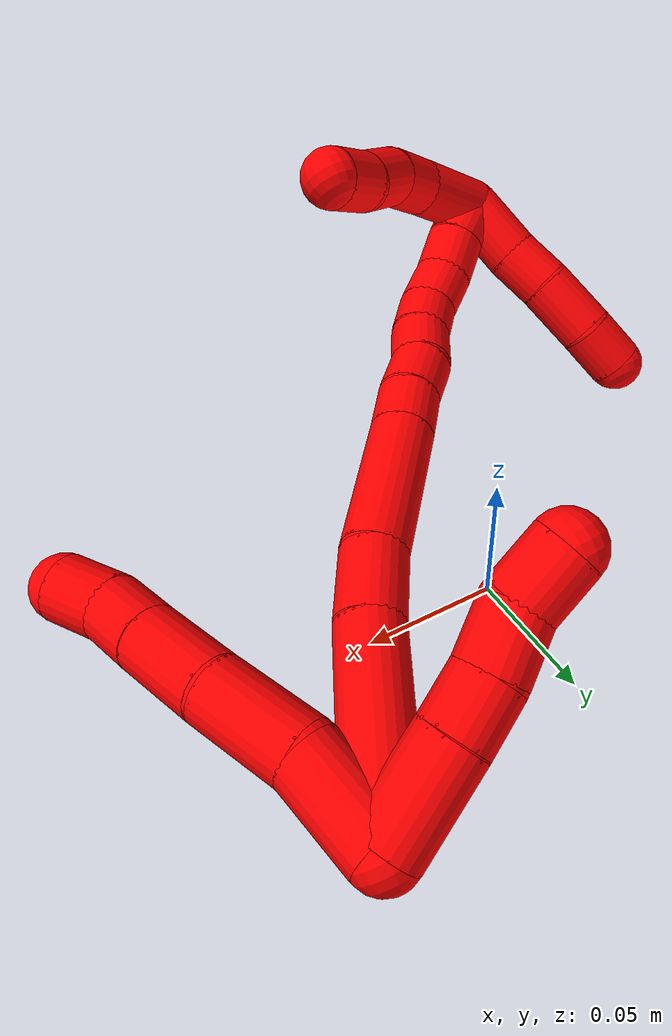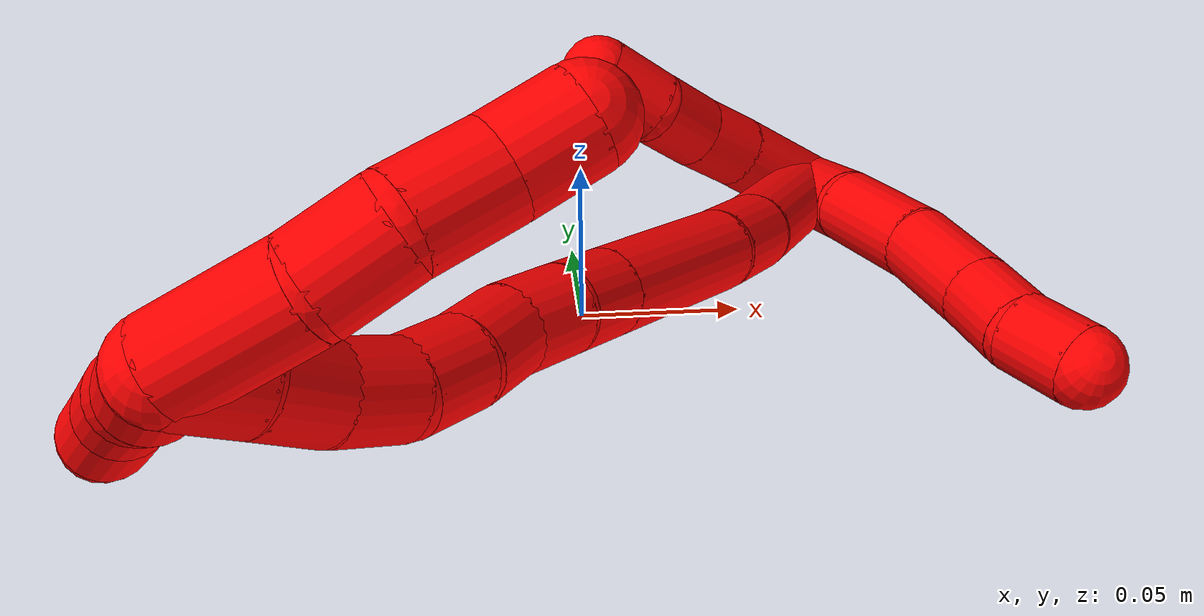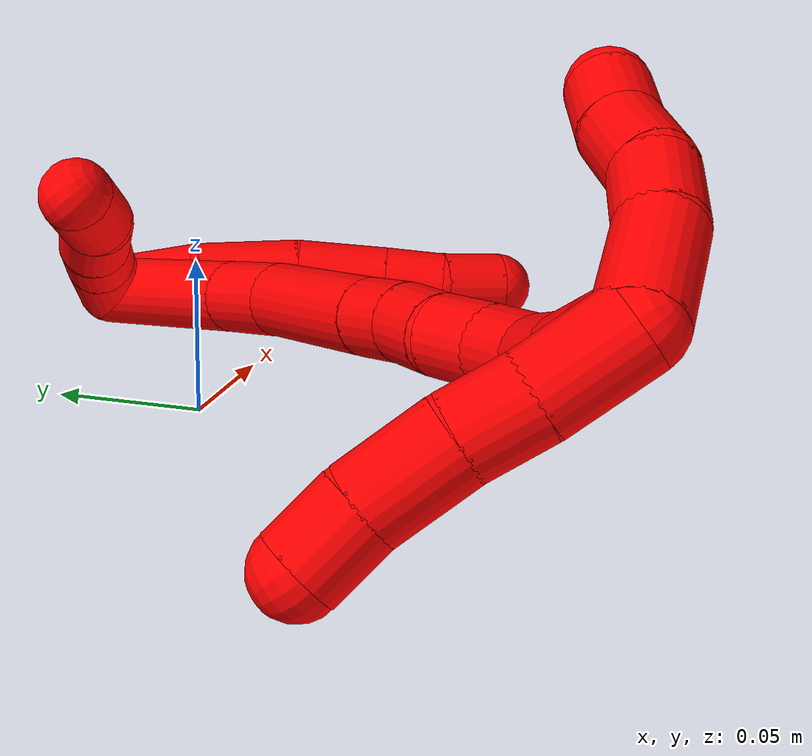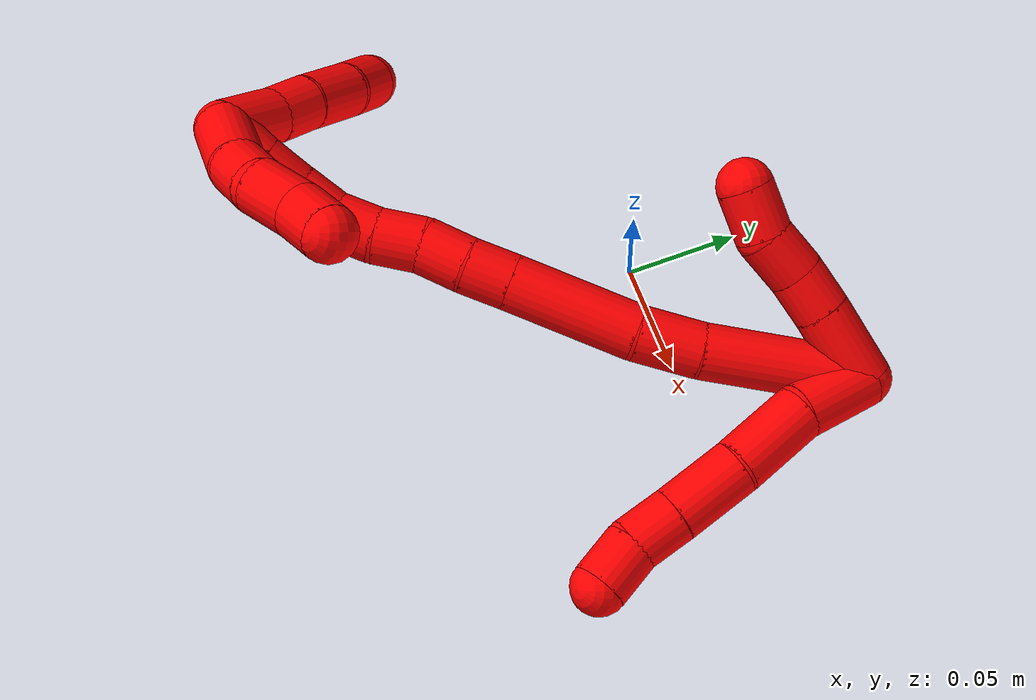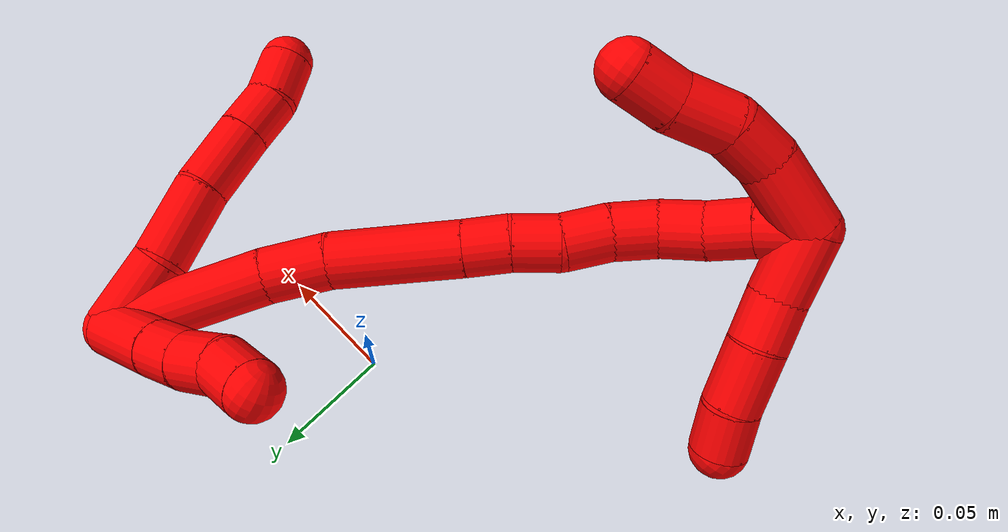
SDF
<sdf version="1.7">
 <world name="default">
  <model name="2">
   <static>0</static>
   <link name="2">
    <collision name="collision-cylinder-e_1_2_8">
     <pose>0.004506 -0.007192 0.015294 0.439599 0.260555 0.058525</pose>
     <geometry><cylinder><radius>0.0125</radius><length>0.034982</length></cylinder></geometry>
     <surface>
      <friction><ode><mu>1.16</mu><mu2>1.16</mu2><slip1>0</slip1><slip2>0</slip2></ode></friction>
      <contact><ode><kp>1e+06</kp><kd>1</kd><max_vel>0</max_vel><min_depth>0.001</min_depth></ode></contact>
     </surface>
    </collision>
    <visual name="visual-cylinder-e_1_2_8">
     <pose>0.004506 -0.007192 0.015294 0.439599 0.260555 0.058525</pose>
     <geometry><cylinder><radius>0.0125</radius><length>0.034982</length></cylinder></geometry>
     <material><ambient>1 0 0 1</ambient></material>
    </visual>
    <collision name="collision-cylinder-e_2_8_9">
     <pose>0.017592 -0.023187 0.044802 0.554452 0.474136 0.137287</pose>
     <geometry><cylinder><radius>0.0125</radius><length>0.037584</length></cylinder></geometry>
     <surface>
      <friction><ode><mu>1.16</mu><mu2>1.16</mu2><slip1>0</slip1><slip2>0</slip2></ode></friction>
      <contact><ode><kp>1e+06</kp><kd>1</kd><max_vel>0</max_vel><min_depth>0.001</min_depth></ode></contact>
     </surface>
    </collision>
    <visual name="visual-cylinder-e_2_8_9">
     <pose>0.017592 -0.023187 0.044802 0.554452 0.474136 0.137287</pose>
     <geometry><cylinder><radius>0.0125</radius><length>0.037584</length></cylinder></geometry>
     <material><ambient>1 0 0 1</ambient></material>
    </visual>
    <collision name="collision-cylinder-e_3_9_10">
     <pose>0.032942 -0.041651 0.070695 0.691152 0.420047 0.15319</pose>
     <geometry><cylinder><radius>0.0125</radius><length>0.033203</length></cylinder></geometry>
     <surface>
      <friction><ode><mu>1.16</mu><mu2>1.16</mu2><slip1>0</slip1><slip2>0</slip2></ode></friction>
      <contact><ode><kp>1e+06</kp><kd>1</kd><max_vel>0</max_vel><min_depth>0.001</min_depth></ode></contact>
     </surface>
    </collision>
    <visual name="visual-cylinder-e_3_9_10">
     <pose>0.032942 -0.041651 0.070695 0.691152 0.420047 0.15319</pose>
     <geometry><cylinder><radius>0.0125</radius><length>0.033203</length></cylinder></geometry>
     <material><ambient>1 0 0 1</ambient></material>
    </visual>
    <collision name="collision-cylinder-e_4_10_11">
     <pose>0.043875 -0.057934 0.090061 0.711015 0.389469 0.146198</pose>
     <geometry><cylinder><radius>0.0125</radius><length>0.02193</length></cylinder></geometry>
     <surface>
      <friction><ode><mu>1.16</mu><mu2>1.16</mu2><slip1>0</slip1><slip2>0</slip2></ode></friction>
      <contact><ode><kp>1e+06</kp><kd>1</kd><max_vel>0</max_vel><min_depth>0.001</min_depth></ode></contact>
     </surface>
    </collision>
    <visual name="visual-cylinder-e_4_10_11">
     <pose>0.043875 -0.057934 0.090061 0.711015 0.389469 0.146198</pose>
     <geometry><cylinder><radius>0.0125</radius><length>0.02193</length></cylinder></geometry>
     <material><ambient>1 0 0 1</ambient></material>
    </visual>
    <collision name="collision-cylinder-e_5_11_6">
     <pose>0.054752 -0.069593 0.105088 0.601581 0.646045 0.206937</pose>
     <geometry><cylinder><radius>0.0125</radius><length>0.022301</length></cylinder></geometry>
     <surface>
      <friction><ode><mu>1.16</mu><mu2>1.16</mu2><slip1>0</slip1><slip2>0</slip2></ode></friction>
      <contact><ode><kp>1e+06</kp><kd>1</kd><max_vel>0</max_vel><min_depth>0.001</min_depth></ode></contact>
     </surface>
    </collision>
    <visual name="visual-cylinder-e_5_11_6">
     <pose>0.054752 -0.069593 0.105088 0.601581 0.646045 0.206937</pose>
     <geometry><cylinder><radius>0.0125</radius><length>0.022301</length></cylinder></geometry>
     <material><ambient>1 0 0 1</ambient></material>
    </visual>
    <collision name="collision-cylinder-e_1_2_12">
     <pose>-0.015446 0.000532 0.008745 -0.060721 -1.05486 0.035375</pose>
     <geometry><cylinder><radius>0.0125</radius><length>0.035515</length></cylinder></geometry>
     <surface>
      <friction><ode><mu>1.16</mu><mu2>1.16</mu2><slip1>0</slip1><slip2>0</slip2></ode></friction>
      <contact><ode><kp>1e+06</kp><kd>1</kd><max_vel>0</max_vel><min_depth>0.001</min_depth></ode></contact>
     </surface>
    </collision>
    <visual name="visual-cylinder-e_1_2_12">
     <pose>-0.015446 0.000532 0.008745 -0.060721 -1.05486 0.035375</pose>
     <geometry><cylinder><radius>0.0125</radius><length>0.035515</length></cylinder></geometry>
     <material><ambient>1 0 0 1</ambient></material>
    </visual>
    <collision name="collision-cylinder-e_2_12_13">
     <pose>-0.039542 0.00094 0.022642 0.023931 -1.03336 -0.013597</pose>
     <geometry><cylinder><radius>0.0125</radius><length>0.020137</length></cylinder></geometry>
     <surface>
      <friction><ode><mu>1.16</mu><mu2>1.16</mu2><slip1>0</slip1><slip2>0</slip2></ode></friction>
      <contact><ode><kp>1e+06</kp><kd>1</kd><max_vel>0</max_vel><min_depth>0.001</min_depth></ode></contact>
     </surface>
    </collision>
    <visual name="visual-cylinder-e_2_12_13">
     <pose>-0.039542 0.00094 0.022642 0.023931 -1.03336 -0.013597</pose>
     <geometry><cylinder><radius>0.0125</radius><length>0.020137</length></cylinder></geometry>
     <material><ambient>1 0 0 1</ambient></material>
    </visual>
    <collision name="collision-cylinder-e_3_13_14">
     <pose>-0.056657 0.000551 0.034641 0.038786 -0.890511 -0.018511</pose>
     <geometry><cylinder><radius>0.0125</radius><length>0.021782</length></cylinder></geometry>
     <surface>
      <friction><ode><mu>1.16</mu><mu2>1.16</mu2><slip1>0</slip1><slip2>0</slip2></ode></friction>
      <contact><ode><kp>1e+06</kp><kd>1</kd><max_vel>0</max_vel><min_depth>0.001</min_depth></ode></contact>
     </surface>
    </collision>
    <visual name="visual-cylinder-e_3_13_14">
     <pose>-0.056657 0.000551 0.034641 0.038786 -0.890511 -0.018511</pose>
     <geometry><cylinder><radius>0.0125</radius><length>0.021782</length></cylinder></geometry>
     <material><ambient>1 0 0 1</ambient></material>
    </visual>
    <collision name="collision-cylinder-e_4_14_5">
     <pose>-0.075408 0.002155 0.045733 -0.414682 -1.14694 0.270083</pose>
     <geometry><cylinder><radius>0.0125</radius><length>0.022566</length></cylinder></geometry>
     <surface>
      <friction><ode><mu>1.16</mu><mu2>1.16</mu2><slip1>0</slip1><slip2>0</slip2></ode></friction>
      <contact><ode><kp>1e+06</kp><kd>1</kd><max_vel>0</max_vel><min_depth>0.001</min_depth></ode></contact>
     </surface>
    </collision>
    <visual name="visual-cylinder-e_4_14_5">
     <pose>-0.075408 0.002155 0.045733 -0.414682 -1.14694 0.270083</pose>
     <geometry><cylinder><radius>0.0125</radius><length>0.022566</length></cylinder></geometry>
     <material><ambient>1 0 0 1</ambient></material>
    </visual>
    <collision name="collision-cylinder-e_1_2_15">
     <pose>-0.01342 -0.01954 0.027008 0.626314 -0.382723 -0.125302</pose>
     <geometry><cylinder><radius>0.0125</radius><length>0.07187</length></cylinder></geometry>
     <surface>
      <friction><ode><mu>1.16</mu><mu2>1.16</mu2><slip1>0</slip1><slip2>0</slip2></ode></friction>
      <contact><ode><kp>1e+06</kp><kd>1</kd><max_vel>0</max_vel><min_depth>0.001</min_depth></ode></contact>
     </surface>
    </collision>
    <visual name="visual-cylinder-e_1_2_15">
     <pose>-0.01342 -0.01954 0.027008 0.626314 -0.382723 -0.125302</pose>
     <geometry><cylinder><radius>0.0125</radius><length>0.07187</length></cylinder></geometry>
     <material><ambient>1 0 0 1</ambient></material>
    </visual>
    <collision name="collision-cylinder-e_2_15_16">
     <pose>-0.03351 -0.046476 0.064134 0.63124 -0.489048 -0.162593</pose>
     <geometry><cylinder><radius>0.0125</radius><length>0.028395</length></cylinder></geometry>
     <surface>
      <friction><ode><mu>1.16</mu><mu2>1.16</mu2><slip1>0</slip1><slip2>0</slip2></ode></friction>
      <contact><ode><kp>1e+06</kp><kd>1</kd><max_vel>0</max_vel><min_depth>0.001</min_depth></ode></contact>
     </surface>
    </collision>
    <visual name="visual-cylinder-e_2_15_16">
     <pose>-0.03351 -0.046476 0.064134 0.63124 -0.489048 -0.162593</pose>
     <geometry><cylinder><radius>0.0125</radius><length>0.028395</length></cylinder></geometry>
     <material><ambient>1 0 0 1</ambient></material>
    </visual>
    <collision name="collision-cylinder-e_3_16_17">
     <pose>-0.056954 -0.069018 0.092334 0.697237 -0.618178 -0.231091</pose>
     <geometry><cylinder><radius>0.0125</radius><length>0.057887</length></cylinder></geometry>
     <surface>
      <friction><ode><mu>1.16</mu><mu2>1.16</mu2><slip1>0</slip1><slip2>0</slip2></ode></friction>
      <contact><ode><kp>1e+06</kp><kd>1</kd><max_vel>0</max_vel><min_depth>0.001</min_depth></ode></contact>
     </surface>
    </collision>
    <visual name="visual-cylinder-e_3_16_17">
     <pose>-0.056954 -0.069018 0.092334 0.697237 -0.618178 -0.231091</pose>
     <geometry><cylinder><radius>0.0125</radius><length>0.057887</length></cylinder></geometry>
     <material><ambient>1 0 0 1</ambient></material>
    </visual>
    <collision name="collision-cylinder-e_4_17_18">
     <pose>-0.079408 -0.089372 0.116969 0.67164 -0.596255 -0.213694</pose>
     <geometry><cylinder><radius>0.0125</radius><length>0.020231</length></cylinder></geometry>
     <surface>
      <friction><ode><mu>1.16</mu><mu2>1.16</mu2><slip1>0</slip1><slip2>0</slip2></ode></friction>
      <contact><ode><kp>1e+06</kp><kd>1</kd><max_vel>0</max_vel><min_depth>0.001</min_depth></ode></contact>
     </surface>
    </collision>
    <visual name="visual-cylinder-e_4_17_18">
     <pose>-0.079408 -0.089372 0.116969 0.67164 -0.596255 -0.213694</pose>
     <geometry><cylinder><radius>0.0125</radius><length>0.020231</length></cylinder></geometry>
     <material><ambient>1 0 0 1</ambient></material>
    </visual>
    <collision name="collision-cylinder-e_5_18_19">
     <pose>-0.091591 -0.100255 0.129161 0.788497 -0.682432 -0.293347</pose>
     <geometry><cylinder><radius>0.0125</radius><length>0.02062</length></cylinder></geometry>
     <surface>
      <friction><ode><mu>1.16</mu><mu2>1.16</mu2><slip1>0</slip1><slip2>0</slip2></ode></friction>
      <contact><ode><kp>1e+06</kp><kd>1</kd><max_vel>0</max_vel><min_depth>0.001</min_depth></ode></contact>
     </surface>
    </collision>
    <visual name="visual-cylinder-e_5_18_19">
     <pose>-0.091591 -0.100255 0.129161 0.788497 -0.682432 -0.293347</pose>
     <geometry><cylinder><radius>0.0125</radius><length>0.02062</length></cylinder></geometry>
     <material><ambient>1 0 0 1</ambient></material>
    </visual>
    <collision name="collision-cylinder-e_6_19_20">
     <pose>-0.102527 -0.112338 0.14169 0.749181 -0.440351 -0.175526</pose>
     <geometry><cylinder><radius>0.0125</radius><length>0.020801</length></cylinder></geometry>
     <surface>
      <friction><ode><mu>1.16</mu><mu2>1.16</mu2><slip1>0</slip1><slip2>0</slip2></ode></friction>
      <contact><ode><kp>1e+06</kp><kd>1</kd><max_vel>0</max_vel><min_depth>0.001</min_depth></ode></contact>
     </surface>
    </collision>
    <visual name="visual-cylinder-e_6_19_20">
     <pose>-0.102527 -0.112338 0.14169 0.749181 -0.440351 -0.175526</pose>
     <geometry><cylinder><radius>0.0125</radius><length>0.020801</length></cylinder></geometry>
     <material><ambient>1 0 0 1</ambient></material>
    </visual>
    <collision name="collision-cylinder-e_7_20_21">
     <pose>-0.112739 -0.124365 0.154545 0.755583 -0.614171 -0.250382</pose>
     <geometry><cylinder><radius>0.0125</radius><length>0.020057</length></cylinder></geometry>
     <surface>
      <friction><ode><mu>1.16</mu><mu2>1.16</mu2><slip1>0</slip1><slip2>0</slip2></ode></friction>
      <contact><ode><kp>1e+06</kp><kd>1</kd><max_vel>0</max_vel><min_depth>0.001</min_depth></ode></contact>
     </surface>
    </collision>
    <visual name="visual-cylinder-e_7_20_21">
     <pose>-0.112739 -0.124365 0.154545 0.755583 -0.614171 -0.250382</pose>
     <geometry><cylinder><radius>0.0125</radius><length>0.020057</length></cylinder></geometry>
     <material><ambient>1 0 0 1</ambient></material>
    </visual>
    <collision name="collision-cylinder-e_8_21_22">
     <pose>-0.126075 -0.133086 0.166372 0.486531 -0.850556 -0.223871</pose>
     <geometry><cylinder><radius>0.0125</radius><length>0.020108</length></cylinder></geometry>
     <surface>
      <friction><ode><mu>1.16</mu><mu2>1.16</mu2><slip1>0</slip1><slip2>0</slip2></ode></friction>
      <contact><ode><kp>1e+06</kp><kd>1</kd><max_vel>0</max_vel><min_depth>0.001</min_depth></ode></contact>
     </surface>
    </collision>
    <visual name="visual-cylinder-e_8_21_22">
     <pose>-0.126075 -0.133086 0.166372 0.486531 -0.850556 -0.223871</pose>
     <geometry><cylinder><radius>0.0125</radius><length>0.020108</length></cylinder></geometry>
     <material><ambient>1 0 0 1</ambient></material>
    </visual>
    <collision name="collision-cylinder-e_9_22_23">
     <pose>-0.140728 -0.137693 0.179125 0.215289 -0.788337 -0.089833</pose>
     <geometry><cylinder><radius>0.0125</radius><length>0.020012</length></cylinder></geometry>
     <surface>
      <friction><ode><mu>1.16</mu><mu2>1.16</mu2><slip1>0</slip1><slip2>0</slip2></ode></friction>
      <contact><ode><kp>1e+06</kp><kd>1</kd><max_vel>0</max_vel><min_depth>0.001</min_depth></ode></contact>
     </surface>
    </collision>
    <visual name="visual-cylinder-e_9_22_23">
     <pose>-0.140728 -0.137693 0.179125 0.215289 -0.788337 -0.089833</pose>
     <geometry><cylinder><radius>0.0125</radius><length>0.020012</length></cylinder></geometry>
     <material><ambient>1 0 0 1</ambient></material>
    </visual>
    <collision name="collision-cylinder-e_10_23_1">
     <pose>-0.155578 -0.140725 0.19216 0.243331 -0.886194 -0.11592</pose>
     <geometry><cylinder><radius>0.0125</radius><length>0.020019</length></cylinder></geometry>
     <surface>
      <friction><ode><mu>1.16</mu><mu2>1.16</mu2><slip1>0</slip1><slip2>0</slip2></ode></friction>
      <contact><ode><kp>1e+06</kp><kd>1</kd><max_vel>0</max_vel><min_depth>0.001</min_depth></ode></contact>
     </surface>
    </collision>
    <visual name="visual-cylinder-e_10_23_1">
     <pose>-0.155578 -0.140725 0.19216 0.243331 -0.886194 -0.11592</pose>
     <geometry><cylinder><radius>0.0125</radius><length>0.020019</length></cylinder></geometry>
     <material><ambient>1 0 0 1</ambient></material>
    </visual>
    <collision name="collision-cylinder-e_1_1_24">
     <pose>-0.15105 -0.132521 0.204658 -0.992235 0.813072 -0.457884</pose>
     <geometry><cylinder><radius>0.0125</radius><length>0.033817</length></cylinder></geometry>
     <surface>
      <friction><ode><mu>1.16</mu><mu2>1.16</mu2><slip1>0</slip1><slip2>0</slip2></ode></friction>
      <contact><ode><kp>1e+06</kp><kd>1</kd><max_vel>0</max_vel><min_depth>0.001</min_depth></ode></contact>
     </surface>
    </collision>
    <visual name="visual-cylinder-e_1_1_24">
     <pose>-0.15105 -0.132521 0.204658 -0.992235 0.813072 -0.457884</pose>
     <geometry><cylinder><radius>0.0125</radius><length>0.033817</length></cylinder></geometry>
     <material><ambient>1 0 0 1</ambient></material>
    </visual>
    <collision name="collision-cylinder-e_2_24_25">
     <pose>-0.131627 -0.115174 0.212995 -1.31611 0.736787 -0.579952</pose>
     <geometry><cylinder><radius>0.0125</radius><length>0.021257</length></cylinder></geometry>
     <surface>
      <friction><ode><mu>1.16</mu><mu2>1.16</mu2><slip1>0</slip1><slip2>0</slip2></ode></friction>
      <contact><ode><kp>1e+06</kp><kd>1</kd><max_vel>0</max_vel><min_depth>0.001</min_depth></ode></contact>
     </surface>
    </collision>
    <visual name="visual-cylinder-e_2_24_25">
     <pose>-0.131627 -0.115174 0.212995 -1.31611 0.736787 -0.579952</pose>
     <geometry><cylinder><radius>0.0125</radius><length>0.021257</length></cylinder></geometry>
     <material><ambient>1 0 0 1</ambient></material>
    </visual>
    <collision name="collision-cylinder-e_3_25_26">
     <pose>-0.116125 -0.098973 0.213172 -1.77828 0.761394 -0.916457</pose>
     <geometry><cylinder><radius>0.0125</radius><length>0.024235</length></cylinder></geometry>
     <surface>
      <friction><ode><mu>1.16</mu><mu2>1.16</mu2><slip1>0</slip1><slip2>0</slip2></ode></friction>
      <contact><ode><kp>1e+06</kp><kd>1</kd><max_vel>0</max_vel><min_depth>0.001</min_depth></ode></contact>
     </surface>
    </collision>
    <visual name="visual-cylinder-e_3_25_26">
     <pose>-0.116125 -0.098973 0.213172 -1.77828 0.761394 -0.916457</pose>
     <geometry><cylinder><radius>0.0125</radius><length>0.024235</length></cylinder></geometry>
     <material><ambient>1 0 0 1</ambient></material>
    </visual>
    <collision name="collision-cylinder-e_4_26_4">
     <pose>-0.100504 -0.083036 0.211857 -1.50398 0.778006 -0.732191</pose>
     <geometry><cylinder><radius>0.0125</radius><length>0.020692</length></cylinder></geometry>
     <surface>
      <friction><ode><mu>1.16</mu><mu2>1.16</mu2><slip1>0</slip1><slip2>0</slip2></ode></friction>
      <contact><ode><kp>1e+06</kp><kd>1</kd><max_vel>0</max_vel><min_depth>0.001</min_depth></ode></contact>
     </surface>
    </collision>
    <visual name="visual-cylinder-e_4_26_4">
     <pose>-0.100504 -0.083036 0.211857 -1.50398 0.778006 -0.732191</pose>
     <geometry><cylinder><radius>0.0125</radius><length>0.020692</length></cylinder></geometry>
     <material><ambient>1 0 0 1</ambient></material>
    </visual>
    <collision name="collision-cylinder-e_1_1_27">
     <pose>-0.16695 -0.142747 0.183959 3.10698 -0.246898 -2.86439</pose>
     <geometry><cylinder><radius>0.0125</radius><length>0.029603</length></cylinder></geometry>
     <surface>
      <friction><ode><mu>1.16</mu><mu2>1.16</mu2><slip1>0</slip1><slip2>0</slip2></ode></friction>
      <contact><ode><kp>1e+06</kp><kd>1</kd><max_vel>0</max_vel><min_depth>0.001</min_depth></ode></contact>
     </surface>
    </collision>
    <visual name="visual-cylinder-e_1_1_27">
     <pose>-0.16695 -0.142747 0.183959 3.10698 -0.246898 -2.86439</pose>
     <geometry><cylinder><radius>0.0125</radius><length>0.029603</length></cylinder></geometry>
     <material><ambient>1 0 0 1</ambient></material>
    </visual>
    <collision name="collision-cylinder-e_2_27_28">
     <pose>-0.17393 -0.142723 0.159669 -3.08928 -0.325632 2.8257</pose>
     <geometry><cylinder><radius>0.0125</radius><length>0.021024</length></cylinder></geometry>
     <surface>
      <friction><ode><mu>1.16</mu><mu2>1.16</mu2><slip1>0</slip1><slip2>0</slip2></ode></friction>
      <contact><ode><kp>1e+06</kp><kd>1</kd><max_vel>0</max_vel><min_depth>0.001</min_depth></ode></contact>
     </surface>
    </collision>
    <visual name="visual-cylinder-e_2_27_28">
     <pose>-0.17393 -0.142723 0.159669 -3.08928 -0.325632 2.8257</pose>
     <geometry><cylinder><radius>0.0125</radius><length>0.021024</length></cylinder></geometry>
     <material><ambient>1 0 0 1</ambient></material>
    </visual>
    <collision name="collision-cylinder-e_3_28_29">
     <pose>-0.181295 -0.143074 0.136243 3.07699 -0.287987 -2.70308</pose>
     <geometry><cylinder><radius>0.0125</radius><length>0.028175</length></cylinder></geometry>
     <surface>
      <friction><ode><mu>1.16</mu><mu2>1.16</mu2><slip1>0</slip1><slip2>0</slip2></ode></friction>
      <contact><ode><kp>1e+06</kp><kd>1</kd><max_vel>0</max_vel><min_depth>0.001</min_depth></ode></contact>
     </surface>
    </collision>
    <visual name="visual-cylinder-e_3_28_29">
     <pose>-0.181295 -0.143074 0.136243 3.07699 -0.287987 -2.70308</pose>
     <geometry><cylinder><radius>0.0125</radius><length>0.028175</length></cylinder></geometry>
     <material><ambient>1 0 0 1</ambient></material>
    </visual>
    <collision name="collision-cylinder-e_4_29_3">
     <pose>-0.188753 -0.146336 0.113034 2.90068 -0.332242 -1.89102</pose>
     <geometry><cylinder><radius>0.0125</radius><length>0.021197</length></cylinder></geometry>
     <surface>
      <friction><ode><mu>1.16</mu><mu2>1.16</mu2><slip1>0</slip1><slip2>0</slip2></ode></friction>
      <contact><ode><kp>1e+06</kp><kd>1</kd><max_vel>0</max_vel><min_depth>0.001</min_depth></ode></contact>
     </surface>
    </collision>
    <visual name="visual-cylinder-e_4_29_3">
     <pose>-0.188753 -0.146336 0.113034 2.90068 -0.332242 -1.89102</pose>
     <geometry><cylinder><radius>0.0125</radius><length>0.021197</length></cylinder></geometry>
     <material><ambient>1 0 0 1</ambient></material>
    </visual>
    <collision name="collision-sphere-3">
     <pose>-0.192209 -0.148727 0.103305 0 -0 0</pose>
     <geometry><sphere><radius>0.0125</radius></sphere></geometry>
     <surface>
      <friction><ode><mu>1.16</mu><mu2>1.16</mu2><slip1>0</slip1><slip2>0</slip2></ode></friction>
      <contact><ode><kp>1e+06</kp><kd>1</kd><max_vel>0</max_vel><min_depth>0.001</min_depth></ode></contact>
     </surface>
    </collision>
    <visual name="visual-sphere-3">
     <pose>-0.192209 -0.148727 0.103305 0 -0 0</pose>
     <geometry><sphere><radius>0.0125</radius></sphere></geometry>
     <material><ambient>1 0 0 1</ambient></material>
    </visual>
    <collision name="collision-sphere-29">
     <pose>-0.185296 -0.143946 0.122764 0 -0 0</pose>
     <geometry><sphere><radius>0.0125</radius></sphere></geometry>
     <surface>
      <friction><ode><mu>1.16</mu><mu2>1.16</mu2><slip1>0</slip1><slip2>0</slip2></ode></friction>
      <contact><ode><kp>1e+06</kp><kd>1</kd><max_vel>0</max_vel><min_depth>0.001</min_depth></ode></contact>
     </surface>
    </collision>
    <visual name="visual-sphere-29">
     <pose>-0.185296 -0.143946 0.122764 0 -0 0</pose>
     <geometry><sphere><radius>0.0125</radius></sphere></geometry>
     <material><ambient>1 0 0 1</ambient></material>
    </visual>
    <collision name="collision-sphere-28">
     <pose>-0.177293 -0.142202 0.149723 0 -0 0</pose>
     <geometry><sphere><radius>0.0125</radius></sphere></geometry>
     <surface>
      <friction><ode><mu>1.16</mu><mu2>1.16</mu2><slip1>0</slip1><slip2>0</slip2></ode></friction>
      <contact><ode><kp>1e+06</kp><kd>1</kd><max_vel>0</max_vel><min_depth>0.001</min_depth></ode></contact>
     </surface>
    </collision>
    <visual name="visual-sphere-28">
     <pose>-0.177293 -0.142202 0.149723 0 -0 0</pose>
     <geometry><sphere><radius>0.0125</radius></sphere></geometry>
     <material><ambient>1 0 0 1</ambient></material>
    </visual>
    <collision name="collision-sphere-27">
     <pose>-0.170567 -0.143244 0.169615 0 -0 0</pose>
     <geometry><sphere><radius>0.0125</radius></sphere></geometry>
     <surface>
      <friction><ode><mu>1.16</mu><mu2>1.16</mu2><slip1>0</slip1><slip2>0</slip2></ode></friction>
      <contact><ode><kp>1e+06</kp><kd>1</kd><max_vel>0</max_vel><min_depth>0.001</min_depth></ode></contact>
     </surface>
    </collision>
    <visual name="visual-sphere-27">
     <pose>-0.170567 -0.143244 0.169615 0 -0 0</pose>
     <geometry><sphere><radius>0.0125</radius></sphere></geometry>
     <material><ambient>1 0 0 1</ambient></material>
    </visual>
    <collision name="collision-sphere-4">
     <pose>-0.093242 -0.075683 0.212349 0 -0 0</pose>
     <geometry><sphere><radius>0.0125</radius></sphere></geometry>
     <surface>
      <friction><ode><mu>1.16</mu><mu2>1.16</mu2><slip1>0</slip1><slip2>0</slip2></ode></friction>
      <contact><ode><kp>1e+06</kp><kd>1</kd><max_vel>0</max_vel><min_depth>0.001</min_depth></ode></contact>
     </surface>
    </collision>
    <visual name="visual-sphere-4">
     <pose>-0.093242 -0.075683 0.212349 0 -0 0</pose>
     <geometry><sphere><radius>0.0125</radius></sphere></geometry>
     <material><ambient>1 0 0 1</ambient></material>
    </visual>
    <collision name="collision-sphere-26">
     <pose>-0.107765 -0.090389 0.211365 0 -0 0</pose>
     <geometry><sphere><radius>0.0125</radius></sphere></geometry>
     <surface>
      <friction><ode><mu>1.16</mu><mu2>1.16</mu2><slip1>0</slip1><slip2>0</slip2></ode></friction>
      <contact><ode><kp>1e+06</kp><kd>1</kd><max_vel>0</max_vel><min_depth>0.001</min_depth></ode></contact>
     </surface>
    </collision>
    <visual name="visual-sphere-26">
     <pose>-0.107765 -0.090389 0.211365 0 -0 0</pose>
     <geometry><sphere><radius>0.0125</radius></sphere></geometry>
     <material><ambient>1 0 0 1</ambient></material>
    </visual>
    <collision name="collision-sphere-25">
     <pose>-0.124485 -0.107556 0.214979 0 -0 0</pose>
     <geometry><sphere><radius>0.0125</radius></sphere></geometry>
     <surface>
      <friction><ode><mu>1.16</mu><mu2>1.16</mu2><slip1>0</slip1><slip2>0</slip2></ode></friction>
      <contact><ode><kp>1e+06</kp><kd>1</kd><max_vel>0</max_vel><min_depth>0.001</min_depth></ode></contact>
     </surface>
    </collision>
    <visual name="visual-sphere-25">
     <pose>-0.124485 -0.107556 0.214979 0 -0 0</pose>
     <geometry><sphere><radius>0.0125</radius></sphere></geometry>
     <material><ambient>1 0 0 1</ambient></material>
    </visual>
    <collision name="collision-sphere-24">
     <pose>-0.138768 -0.122792 0.211012 0 -0 0</pose>
     <geometry><sphere><radius>0.0125</radius></sphere></geometry>
     <surface>
      <friction><ode><mu>1.16</mu><mu2>1.16</mu2><slip1>0</slip1><slip2>0</slip2></ode></friction>
      <contact><ode><kp>1e+06</kp><kd>1</kd><max_vel>0</max_vel><min_depth>0.001</min_depth></ode></contact>
     </surface>
    </collision>
    <visual name="visual-sphere-24">
     <pose>-0.138768 -0.122792 0.211012 0 -0 0</pose>
     <geometry><sphere><radius>0.0125</radius></sphere></geometry>
     <material><ambient>1 0 0 1</ambient></material>
    </visual>
    <collision name="collision-sphere-1">
     <pose>-0.163332 -0.14225 0.198303 0 -0 0</pose>
     <geometry><sphere><radius>0.0125</radius></sphere></geometry>
     <surface>
      <friction><ode><mu>1.16</mu><mu2>1.16</mu2><slip1>0</slip1><slip2>0</slip2></ode></friction>
      <contact><ode><kp>1e+06</kp><kd>1</kd><max_vel>0</max_vel><min_depth>0.001</min_depth></ode></contact>
     </surface>
    </collision>
    <visual name="visual-sphere-1">
     <pose>-0.163332 -0.14225 0.198303 0 -0 0</pose>
     <geometry><sphere><radius>0.0125</radius></sphere></geometry>
     <material><ambient>1 0 0 1</ambient></material>
    </visual>
    <collision name="collision-sphere-23">
     <pose>-0.147824 -0.1392 0.186017 0 -0 0</pose>
     <geometry><sphere><radius>0.0125</radius></sphere></geometry>
     <surface>
      <friction><ode><mu>1.16</mu><mu2>1.16</mu2><slip1>0</slip1><slip2>0</slip2></ode></friction>
      <contact><ode><kp>1e+06</kp><kd>1</kd><max_vel>0</max_vel><min_depth>0.001</min_depth></ode></contact>
     </surface>
    </collision>
    <visual name="visual-sphere-23">
     <pose>-0.147824 -0.1392 0.186017 0 -0 0</pose>
     <geometry><sphere><radius>0.0125</radius></sphere></geometry>
     <material><ambient>1 0 0 1</ambient></material>
    </visual>
    <collision name="collision-sphere-22">
     <pose>-0.133632 -0.136186 0.172234 0 -0 0</pose>
     <geometry><sphere><radius>0.0125</radius></sphere></geometry>
     <surface>
      <friction><ode><mu>1.16</mu><mu2>1.16</mu2><slip1>0</slip1><slip2>0</slip2></ode></friction>
      <contact><ode><kp>1e+06</kp><kd>1</kd><max_vel>0</max_vel><min_depth>0.001</min_depth></ode></contact>
     </surface>
    </collision>
    <visual name="visual-sphere-22">
     <pose>-0.133632 -0.136186 0.172234 0 -0 0</pose>
     <geometry><sphere><radius>0.0125</radius></sphere></geometry>
     <material><ambient>1 0 0 1</ambient></material>
    </visual>
    <collision name="collision-sphere-21">
     <pose>-0.118518 -0.129985 0.16051 0 -0 0</pose>
     <geometry><sphere><radius>0.0125</radius></sphere></geometry>
     <surface>
      <friction><ode><mu>1.16</mu><mu2>1.16</mu2><slip1>0</slip1><slip2>0</slip2></ode></friction>
      <contact><ode><kp>1e+06</kp><kd>1</kd><max_vel>0</max_vel><min_depth>0.001</min_depth></ode></contact>
     </surface>
    </collision>
    <visual name="visual-sphere-21">
     <pose>-0.118518 -0.129985 0.16051 0 -0 0</pose>
     <geometry><sphere><radius>0.0125</radius></sphere></geometry>
     <material><ambient>1 0 0 1</ambient></material>
    </visual>
    <collision name="collision-sphere-6">
     <pose>0.061465 -0.074631 0.112428 0 -0 0</pose>
     <geometry><sphere><radius>0.0125</radius></sphere></geometry>
     <surface>
      <friction><ode><mu>1.16</mu><mu2>1.16</mu2><slip1>0</slip1><slip2>0</slip2></ode></friction>
      <contact><ode><kp>1e+06</kp><kd>1</kd><max_vel>0</max_vel><min_depth>0.001</min_depth></ode></contact>
     </surface>
    </collision>
    <visual name="visual-sphere-6">
     <pose>0.061465 -0.074631 0.112428 0 -0 0</pose>
     <geometry><sphere><radius>0.0125</radius></sphere></geometry>
     <material><ambient>1 0 0 1</ambient></material>
    </visual>
    <collision name="collision-sphere-11">
     <pose>0.048039 -0.064554 0.097747 0 -0 0</pose>
     <geometry><sphere><radius>0.0125</radius></sphere></geometry>
     <surface>
      <friction><ode><mu>1.16</mu><mu2>1.16</mu2><slip1>0</slip1><slip2>0</slip2></ode></friction>
      <contact><ode><kp>1e+06</kp><kd>1</kd><max_vel>0</max_vel><min_depth>0.001</min_depth></ode></contact>
     </surface>
    </collision>
    <visual name="visual-sphere-11">
     <pose>0.048039 -0.064554 0.097747 0 -0 0</pose>
     <geometry><sphere><radius>0.0125</radius></sphere></geometry>
     <material><ambient>1 0 0 1</ambient></material>
    </visual>
    <collision name="collision-sphere-10">
     <pose>0.039712 -0.051314 0.082375 0 -0 0</pose>
     <geometry><sphere><radius>0.0125</radius></sphere></geometry>
     <surface>
      <friction><ode><mu>1.16</mu><mu2>1.16</mu2><slip1>0</slip1><slip2>0</slip2></ode></friction>
      <contact><ode><kp>1e+06</kp><kd>1</kd><max_vel>0</max_vel><min_depth>0.001</min_depth></ode></contact>
     </surface>
    </collision>
    <visual name="visual-sphere-10">
     <pose>0.039712 -0.051314 0.082375 0 -0 0</pose>
     <geometry><sphere><radius>0.0125</radius></sphere></geometry>
     <material><ambient>1 0 0 1</ambient></material>
    </visual>
    <collision name="collision-sphere-9">
     <pose>0.026172 -0.031989 0.059016 0 -0 0</pose>
     <geometry><sphere><radius>0.0125</radius></sphere></geometry>
     <surface>
      <friction><ode><mu>1.16</mu><mu2>1.16</mu2><slip1>0</slip1><slip2>0</slip2></ode></friction>
      <contact><ode><kp>1e+06</kp><kd>1</kd><max_vel>0</max_vel><min_depth>0.001</min_depth></ode></contact>
     </surface>
    </collision>
    <visual name="visual-sphere-9">
     <pose>0.026172 -0.031989 0.059016 0 -0 0</pose>
     <geometry><sphere><radius>0.0125</radius></sphere></geometry>
     <material><ambient>1 0 0 1</ambient></material>
    </visual>
    <collision name="collision-sphere-2">
     <geometry><sphere><radius>0.0125</radius></sphere></geometry>
     <surface>
      <friction><ode><mu>1.16</mu><mu2>1.16</mu2><slip1>0</slip1><slip2>0</slip2></ode></friction>
      <contact><ode><kp>1e+06</kp><kd>1</kd><max_vel>0</max_vel><min_depth>0.001</min_depth></ode></contact>
     </surface>
    </collision>
    <visual name="visual-sphere-2">
     <geometry><sphere><radius>0.0125</radius></sphere></geometry>
     <material><ambient>1 0 0 1</ambient></material>
    </visual>
    <collision name="collision-sphere-19">
     <pose>-0.098093 -0.10593 0.134801 0 -0 0</pose>
     <geometry><sphere><radius>0.0125</radius></sphere></geometry>
     <surface>
      <friction><ode><mu>1.16</mu><mu2>1.16</mu2><slip1>0</slip1><slip2>0</slip2></ode></friction>
      <contact><ode><kp>1e+06</kp><kd>1</kd><max_vel>0</max_vel><min_depth>0.001</min_depth></ode></contact>
     </surface>
    </collision>
    <visual name="visual-sphere-19">
     <pose>-0.098093 -0.10593 0.134801 0 -0 0</pose>
     <geometry><sphere><radius>0.0125</radius></sphere></geometry>
     <material><ambient>1 0 0 1</ambient></material>
    </visual>
    <collision name="collision-sphere-8">
     <pose>0.009012 -0.014385 0.030587 0 -0 0</pose>
     <geometry><sphere><radius>0.0125</radius></sphere></geometry>
     <surface>
      <friction><ode><mu>1.16</mu><mu2>1.16</mu2><slip1>0</slip1><slip2>0</slip2></ode></friction>
      <contact><ode><kp>1e+06</kp><kd>1</kd><max_vel>0</max_vel><min_depth>0.001</min_depth></ode></contact>
     </surface>
    </collision>
    <visual name="visual-sphere-8">
     <pose>0.009012 -0.014385 0.030587 0 -0 0</pose>
     <geometry><sphere><radius>0.0125</radius></sphere></geometry>
     <material><ambient>1 0 0 1</ambient></material>
    </visual>
    <collision name="collision-sphere-12">
     <pose>-0.030892 0.001063 0.017489 0 -0 0</pose>
     <geometry><sphere><radius>0.0125</radius></sphere></geometry>
     <surface>
      <friction><ode><mu>1.16</mu><mu2>1.16</mu2><slip1>0</slip1><slip2>0</slip2></ode></friction>
      <contact><ode><kp>1e+06</kp><kd>1</kd><max_vel>0</max_vel><min_depth>0.001</min_depth></ode></contact>
     </surface>
    </collision>
    <visual name="visual-sphere-12">
     <pose>-0.030892 0.001063 0.017489 0 -0 0</pose>
     <geometry><sphere><radius>0.0125</radius></sphere></geometry>
     <material><ambient>1 0 0 1</ambient></material>
    </visual>
    <collision name="collision-sphere-13">
     <pose>-0.048191 0.000817 0.027795 0 -0 0</pose>
     <geometry><sphere><radius>0.0125</radius></sphere></geometry>
     <surface>
      <friction><ode><mu>1.16</mu><mu2>1.16</mu2><slip1>0</slip1><slip2>0</slip2></ode></friction>
      <contact><ode><kp>1e+06</kp><kd>1</kd><max_vel>0</max_vel><min_depth>0.001</min_depth></ode></contact>
     </surface>
    </collision>
    <visual name="visual-sphere-13">
     <pose>-0.048191 0.000817 0.027795 0 -0 0</pose>
     <geometry><sphere><radius>0.0125</radius></sphere></geometry>
     <material><ambient>1 0 0 1</ambient></material>
    </visual>
    <collision name="collision-sphere-14">
     <pose>-0.065124 0.000285 0.041486 0 -0 0</pose>
     <geometry><sphere><radius>0.0125</radius></sphere></geometry>
     <surface>
      <friction><ode><mu>1.16</mu><mu2>1.16</mu2><slip1>0</slip1><slip2>0</slip2></ode></friction>
      <contact><ode><kp>1e+06</kp><kd>1</kd><max_vel>0</max_vel><min_depth>0.001</min_depth></ode></contact>
     </surface>
    </collision>
    <visual name="visual-sphere-14">
     <pose>-0.065124 0.000285 0.041486 0 -0 0</pose>
     <geometry><sphere><radius>0.0125</radius></sphere></geometry>
     <material><ambient>1 0 0 1</ambient></material>
    </visual>
    <collision name="collision-sphere-5">
     <pose>-0.085692 0.004025 0.04998 0 -0 0</pose>
     <geometry><sphere><radius>0.0125</radius></sphere></geometry>
     <surface>
      <friction><ode><mu>1.16</mu><mu2>1.16</mu2><slip1>0</slip1><slip2>0</slip2></ode></friction>
      <contact><ode><kp>1e+06</kp><kd>1</kd><max_vel>0</max_vel><min_depth>0.001</min_depth></ode></contact>
     </surface>
    </collision>
    <visual name="visual-sphere-5">
     <pose>-0.085692 0.004025 0.04998 0 -0 0</pose>
     <geometry><sphere><radius>0.0125</radius></sphere></geometry>
     <material><ambient>1 0 0 1</ambient></material>
    </visual>
    <collision name="collision-sphere-15">
     <pose>-0.02684 -0.03908 0.054016 0 -0 0</pose>
     <geometry><sphere><radius>0.0125</radius></sphere></geometry>
     <surface>
      <friction><ode><mu>1.16</mu><mu2>1.16</mu2><slip1>0</slip1><slip2>0</slip2></ode></friction>
      <contact><ode><kp>1e+06</kp><kd>1</kd><max_vel>0</max_vel><min_depth>0.001</min_depth></ode></contact>
     </surface>
    </collision>
    <visual name="visual-sphere-15">
     <pose>-0.02684 -0.03908 0.054016 0 -0 0</pose>
     <geometry><sphere><radius>0.0125</radius></sphere></geometry>
     <material><ambient>1 0 0 1</ambient></material>
    </visual>
    <collision name="collision-sphere-16">
     <pose>-0.040179 -0.053873 0.074252 0 -0 0</pose>
     <geometry><sphere><radius>0.0125</radius></sphere></geometry>
     <surface>
      <friction><ode><mu>1.16</mu><mu2>1.16</mu2><slip1>0</slip1><slip2>0</slip2></ode></friction>
      <contact><ode><kp>1e+06</kp><kd>1</kd><max_vel>0</max_vel><min_depth>0.001</min_depth></ode></contact>
     </surface>
    </collision>
    <visual name="visual-sphere-16">
     <pose>-0.040179 -0.053873 0.074252 0 -0 0</pose>
     <geometry><sphere><radius>0.0125</radius></sphere></geometry>
     <material><ambient>1 0 0 1</ambient></material>
    </visual>
    <collision name="collision-sphere-17">
     <pose>-0.073728 -0.084163 0.110417 0 -0 0</pose>
     <geometry><sphere><radius>0.0125</radius></sphere></geometry>
     <surface>
      <friction><ode><mu>1.16</mu><mu2>1.16</mu2><slip1>0</slip1><slip2>0</slip2></ode></friction>
      <contact><ode><kp>1e+06</kp><kd>1</kd><max_vel>0</max_vel><min_depth>0.001</min_depth></ode></contact>
     </surface>
    </collision>
    <visual name="visual-sphere-17">
     <pose>-0.073728 -0.084163 0.110417 0 -0 0</pose>
     <geometry><sphere><radius>0.0125</radius></sphere></geometry>
     <material><ambient>1 0 0 1</ambient></material>
    </visual>
    <collision name="collision-sphere-18">
     <pose>-0.085089 -0.09458 0.123521 0 -0 0</pose>
     <geometry><sphere><radius>0.0125</radius></sphere></geometry>
     <surface>
      <friction><ode><mu>1.16</mu><mu2>1.16</mu2><slip1>0</slip1><slip2>0</slip2></ode></friction>
      <contact><ode><kp>1e+06</kp><kd>1</kd><max_vel>0</max_vel><min_depth>0.001</min_depth></ode></contact>
     </surface>
    </collision>
    <visual name="visual-sphere-18">
     <pose>-0.085089 -0.09458 0.123521 0 -0 0</pose>
     <geometry><sphere><radius>0.0125</radius></sphere></geometry>
     <material><ambient>1 0 0 1</ambient></material>
    </visual>
    <collision name="collision-sphere-20">
     <pose>-0.10696 -0.118745 0.148579 0 -0 0</pose>
     <geometry><sphere><radius>0.0125</radius></sphere></geometry>
     <surface>
      <friction><ode><mu>1.16</mu><mu2>1.16</mu2><slip1>0</slip1><slip2>0</slip2></ode></friction>
      <contact><ode><kp>1e+06</kp><kd>1</kd><max_vel>0</max_vel><min_depth>0.001</min_depth></ode></contact>
     </surface>
    </collision>
    <visual name="visual-sphere-20">
     <pose>-0.10696 -0.118745 0.148579 0 -0 0</pose>
     <geometry><sphere><radius>0.0125</radius></sphere></geometry>
     <material><ambient>1 0 0 1</ambient></material>
    </visual>
    <inertial>
     <pose>-0.069681 -0.072414 0.104579 0 -0 0</pose>
     <mass>0.75</mass>
     <inertia><ixx>5.1e-05</ixx><ixy>0</ixy><ixz>0</ixz><iyy>6.9e-05</iyy><iyz>0</iyz><izz>8.7e-05</izz></inertia>
    </inertial>
   </link>
   <pose>0.088169 0.072525 0.011376 0.866292 0.237172 -0.116671</pose>
  </model>
 </world>
</sdf>
